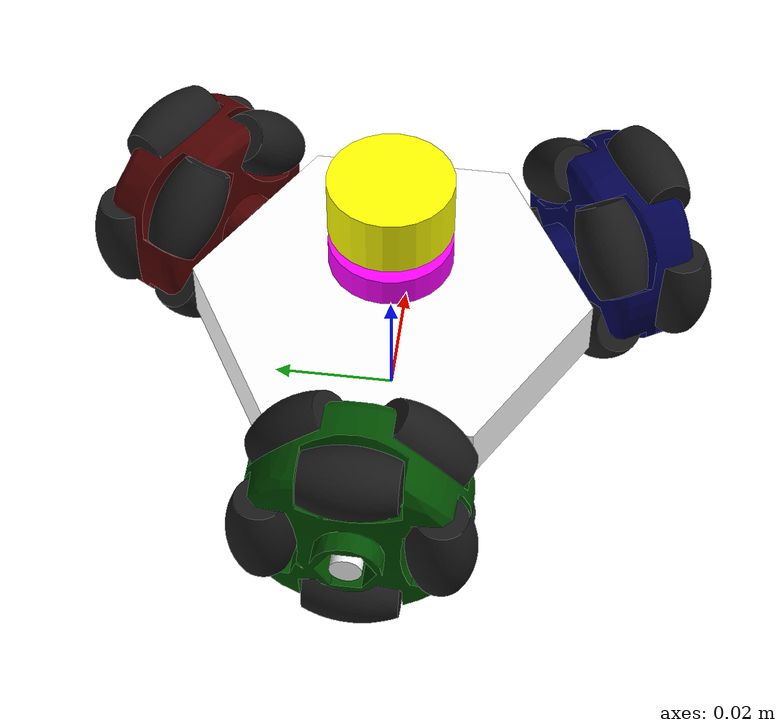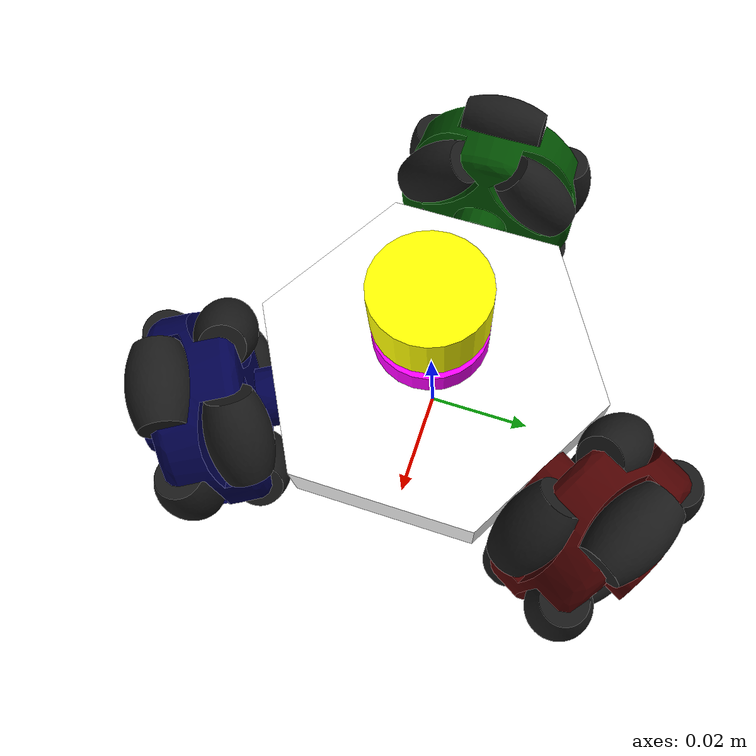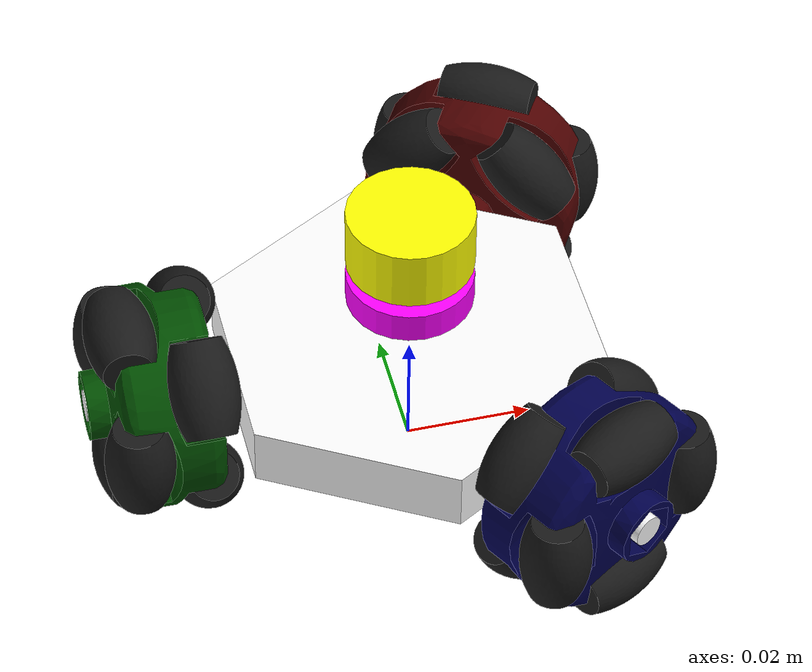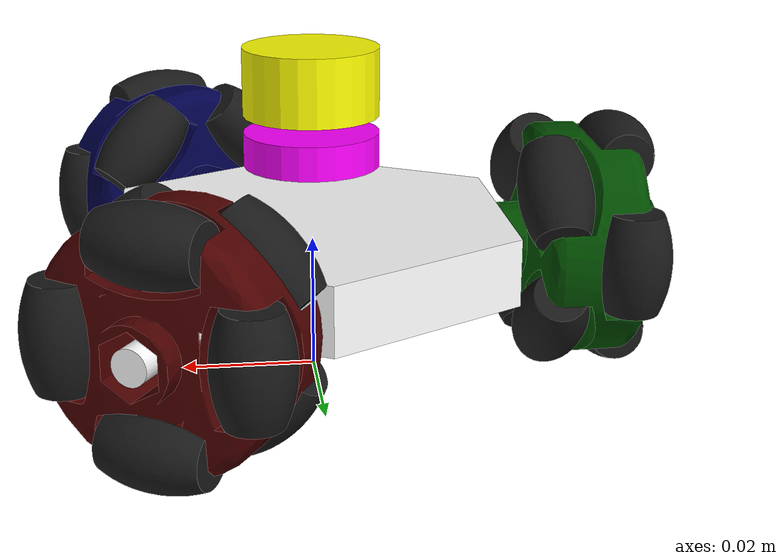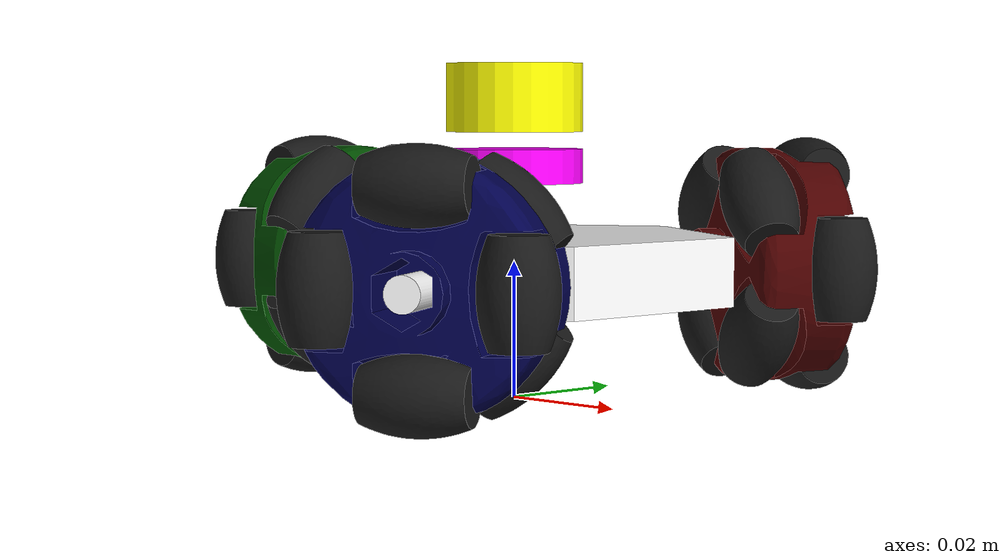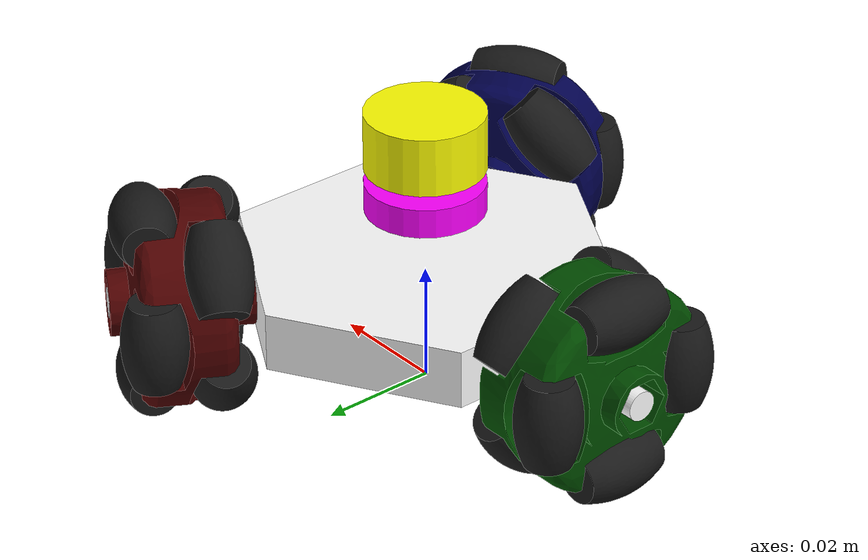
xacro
<?xml version="1.0"?>
<robot
	xmlns:xacro="http://www.ros.org/wiki/xacro"
	name="open_base"
>

	<xacro:include filename="$(find omni_carver_description)/gazebo_description/rim.urdf.xacro"/>
	<xacro:include filename="$(find omni_carver_description)/gazebo_description/gazebo_control.xacro"/>
	<xacro:include filename="$(find omni_carver_description)/gazebo_description/inertial_macros.xacro"/>
	<xacro:include filename="$(find omni_carver_description)/gazebo_description/lidar.xacro"/>
	<xacro:include filename="$(find omni_carver_description)/gazebo_description/imu.xacro"/>

	<link name="origin_link"/>

	<joint name="base_footprint_joint" type="fixed">
		<origin xyz="0 0 0" rpy="0 0 0"/>
		<parent link="origin_link"/>
		<child link="base_footprint"/>
	</joint>

	<link name="base_footprint">

	</link>

	<link name="base_link">

	<inertial>

		<mass value="2"/>
		<inertia
			ixx="0.00002035985530754"
			ixy="0"
			ixz="0"
			iyy="0.00002035985530754"
			iyz="0"
			izz="0.00003945961663220"
		/>

	</inertial>
	<visual>
		<origin xyz="0 0 0" rpy="0 0 -1.570796326794896"/>
		<geometry>

			<mesh filename="package://omni_carver_description/mesh/base.stl"/>

		</geometry>
		<material name="base_material">

			<color rgba="1 1 1 1"/>

		</material>

	</visual>
	<collision>
		<origin xyz="0 0 0" rpy="0 0 1.047197551196597"/>
		<geometry>

			<mesh filename="package://omni_carver_description/mesh/base.stl"/>

		</geometry>

	</collision>

	</link>
	<joint
		name="base_joint"
		type="fixed"
	>

		<parent link="origin_link" />
		<child link="base_link" />
		<origin
			xyz="0 0 0.01905"
		/>

	</joint>
	<xacro:rim_macro
		name="left"
		color="0.3 0 0"
		xyz="0.02 0.03464101615 0"
		rpy="-1.570796326794896 0 -0.5235987756"
	/>
	<xacro:rim_macro
		name="back"
		color="0 0.3 0"
		xyz="-0.04 0 0"
		rpy="0 1.570796326794896 3.141592653589793"
	/>
	<xacro:rim_macro
		name="right"
		color="0 0 0.3"
		xyz="0.02 -0.03464101615 0"
		rpy="1.570796326794896 0 0.5235987756"
	/>

	<xacro:omni_carver_ros2_control/>

	<gazebo>
		<plugin name="gz_ros2_control::GazeboSimROS2ControlPlugin" filename="libgz_ros2_control-system">
			<parameters>$(find omni_carver_gazebo)/config/omni_drive_controller.yaml</parameters>
		</plugin>
		<plugin name="gz::sim::systems::Sensors"
			filename="gz-sim-sensors-system">
			<render_engine>ogre2</render_engine>
		</plugin>
		<plugin
			name="gz::sim::systems::OdometryPublisher"
			filename="gz-sim-odometry-publisher-system">
			<dimensions>3</dimensions>
			<odom_frame>ground_truth/odom</odom_frame>
			<robot_base_frame>origin_link</robot_base_frame>
		</plugin>
		<plugin filename="gz-sim-imu-system"
				name="gz::sim::systems::Imu">
		</plugin>
	</gazebo>

</robot>

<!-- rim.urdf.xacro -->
<robot xmlns:xacro="http://www.ros.org/wiki/xacro">

	<xacro:include filename="$(find omni_carver_description)/gazebo_description/roller.urdf.xacro" />

	<xacro:macro
		name="rim_macro"
		params="name color xyz rpy"
	>

		<link name="rim_${name}_link">

			<inertial>

				<origin xyz="0 0 -0.000343" />
				<mass value="1.0" />
				<inertia
					ixx="6.63684e-07"
					ixy="0"
					ixz="0"
					iyy="6.63684e-07"
					iyz="0"
					izz="9.40333e-07"
				/>

			</inertial>
			<visual>

				<geometry>

					<mesh filename="package://omni_carver_description/mesh/rim.stl" />

				</geometry>
				<material name="rim_${name}_material">

					<color rgba="${color} 1" />

				</material>

			</visual>
			<collision>
				<geometry>
					<mesh filename="package://omni_carver_description/mesh/rim.stl">
					</mesh>
				</geometry>
			</collision>

		</link>
		<joint
			name="rim_${name}_joint"
			type="continuous"
		>

			<parent link="base_link" />
			<child link="rim_${name}_link" />
			<axis xyz="0 0 1" />
			<origin
				xyz="${xyz}"
				rpy="${rpy}"
			/>

		</joint>
		<xacro:roller_macro
			parent="${name}"
			name="e"
			xyz="0.01355 0 0.0055"
			rpy="-1.570796326794896 0 0"
		/>
		<xacro:roller_macro
			parent="${name}"
			name="ne"
			xyz="0.00958129689 0.00958129689 -0.0055"
			rpy="-1.570796326794896 0 0.7853981633974483"
		/>
		<xacro:roller_macro
			parent="${name}"
			name="n"
			xyz="0 0.01355 0.0055"
			rpy="-1.570796326794896 0 1.570796326794896"
		/>
		<xacro:roller_macro
			parent="${name}"
			name="nw"
			xyz="-0.00958129689 0.00958129689 -0.0055"
			rpy="-1.570796326794896 0 2.356194490192345"
		/>
		<xacro:roller_macro
			parent="${name}"
			name="w"
			xyz="-0.01355 0 0.0055"
			rpy="-1.570796326794896 0 3.141592653589793"
		/>
		<xacro:roller_macro
			parent="${name}"
			name="sw"
			xyz="-0.00958129689 -0.00958129689 -0.0055"
			rpy="-1.570796326794896 0 -2.356194490192345"
		/>
		<xacro:roller_macro
			parent="${name}"
			name="s"
			xyz="0 -0.01355 0.0055"
			rpy="-1.570796326794896 0 -1.570796326794896"
		/>
		<xacro:roller_macro
			parent="${name}"
			name="se"
			xyz="0.00958129689 -0.00958129689 -0.0055"
			rpy="-1.570796326794896 0 -0.7853981633974483"
		/>
		<transmission name="rim_${name}_transmission">
			<type>transmission_interface/SimpleTransmission</type>
			<joint name="rim_${name}_joint">
				<hardwareInterface>VelocityJointInterface</hardwareInterface>
			</joint>
			<actuator name="rim_${name}_motor">
				<hardwareInterface>VelocityJointInterface</hardwareInterface>
				<mechanicalReduction>1</mechanicalReduction>
			</actuator>

		</transmission>

	</xacro:macro>

</robot>

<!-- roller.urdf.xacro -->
<robot xmlns:xacro="http://www.ros.org/wiki/xacro">

	<xacro:macro
		name="roller_macro"
		params="parent name xyz rpy"
	>

		<link name="roller_${name}_rim_${parent}_link">

			<inertial>

				<mass value="0.5"/>
				<inertia
					ixx="2.53776e-08"
					ixy="0"
					ixz="0"
					iyy="2.53776e-08"
					iyz="0"
					izz="1.47666e-08"
				/>

			</inertial>
			<visual>

				<geometry>

					<mesh filename="package://omni_carver_description/mesh/roller.stl"/>

				</geometry>
				<material name="roller_material">

					<color rgba="0.1 0.1 0.1 1"/>

				</material>

			</visual>
			<collision>
				<geometry>

					<mesh filename="package://omni_carver_description/mesh/roller.stl">
					</mesh>

				</geometry>
			</collision>

		</link>
		<joint
			name="roller_${name}_rim_${parent}_joint"
			type="continuous"
		>

			<parent link="rim_${parent}_link"/>
			<child link="roller_${name}_rim_${parent}_link"/>
			<axis xyz="0 0 1"/>
			<origin
				xyz="${xyz}"
				rpy="${rpy}"
			/>

		</joint>

	</xacro:macro>

</robot>

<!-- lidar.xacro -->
<robot xmlns:xacro="http://www.ros.org/wiki/xacro">

	<link name="laser_link">
		<xacro:inertial_cylinder mass="0.1" length="0.01" radius="0.01">
			<origin xyz="0 0 0" rpy="0 0 0"/>
		</xacro:inertial_cylinder>
		<visual>
			<geometry>
				<cylinder radius="0.01" length="0.01"/>
			</geometry>
			<material name="yellow">
				<color rgba="1 1 0 1"/>
			</material>
		</visual>
		<collision>
			<geometry>
				<cylinder radius="0.01" length="0.01"/>
			</geometry>
		</collision>
	</link>

	<joint name="laser_joint" type="fixed">
		<parent link="base_link"/>
		<child link="laser_link"/>
		<origin
			xyz="0 0 0.025"
			rpy="0 0 0"
		/>
	</joint>

    <gazebo reference="laser_link">
      <sensor name="laser" type="gpu_lidar">
        <gz_frame_id>laser_link</gz_frame_id>
        <topic>/scan</topic>
        <update_rate>10</update_rate>
        <lidar>
          <scan>
            <horizontal>
              <samples>360</samples>
              <resolution>1</resolution>
              <min_angle>-3.14</min_angle>
              <max_angle>3.14</max_angle>
            </horizontal>
          </scan>
          <range>
            <min>0.2</min>
            <max>30.0</max>
            <resolution>0.01</resolution>
          </range>
          <frame_id>laser_link</frame_id>
        </lidar>
        <alwaysOn>ture</alwaysOn>
        <visualize>true</visualize>
      </sensor>
    </gazebo>

</robot>

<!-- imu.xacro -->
<robot xmlns:xacro="http://www.ros.org/wiki/xacro">

    <link name="imu_link">
        <visual>
            <geometry>
                <cylinder radius="0.01" length="0.005"/>
            </geometry>
            <material name="pink">
                <color rgba="1 0 1 1"/>
            </material>
        </visual>
        <collision>
            <geometry>
                <cylinder radius="0.01" length="0.005"/>
            </geometry>
        </collision>
        <xacro:inertial_cylinder mass="0.1" length="0.01" radius="0.005">
            <origin xyz="0 0 0" rpy="0 0 0"/>
        </xacro:inertial_cylinder>
    </link>

    <joint name="imu_joint" type="fixed">
        <parent link="base_link"/>
        <child link="imu_link"/>
        <origin
            xyz="0 0 0.015"
            rpy="0 0 0"
        />
    </joint>

    <gazebo reference="imu_link">
        <sensor name="imu" type="imu">
            <always_on>1</always_on>
            <update_rate>1</update_rate>
            <visualize>true</visualize>
            <topic>imu</topic>
            <gz_frame_id>imu_link</gz_frame_id>
            <frame_id>/imu_link</frame_id>
        </sensor>
    </gazebo>

</robot>
